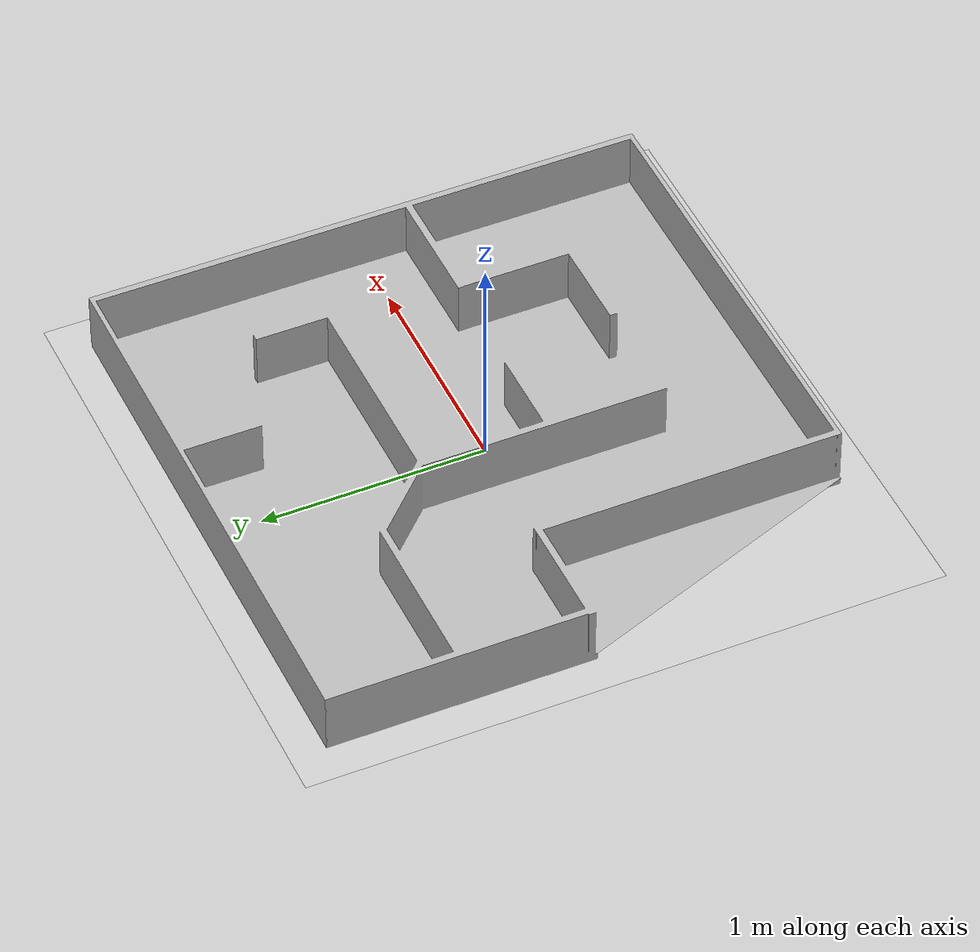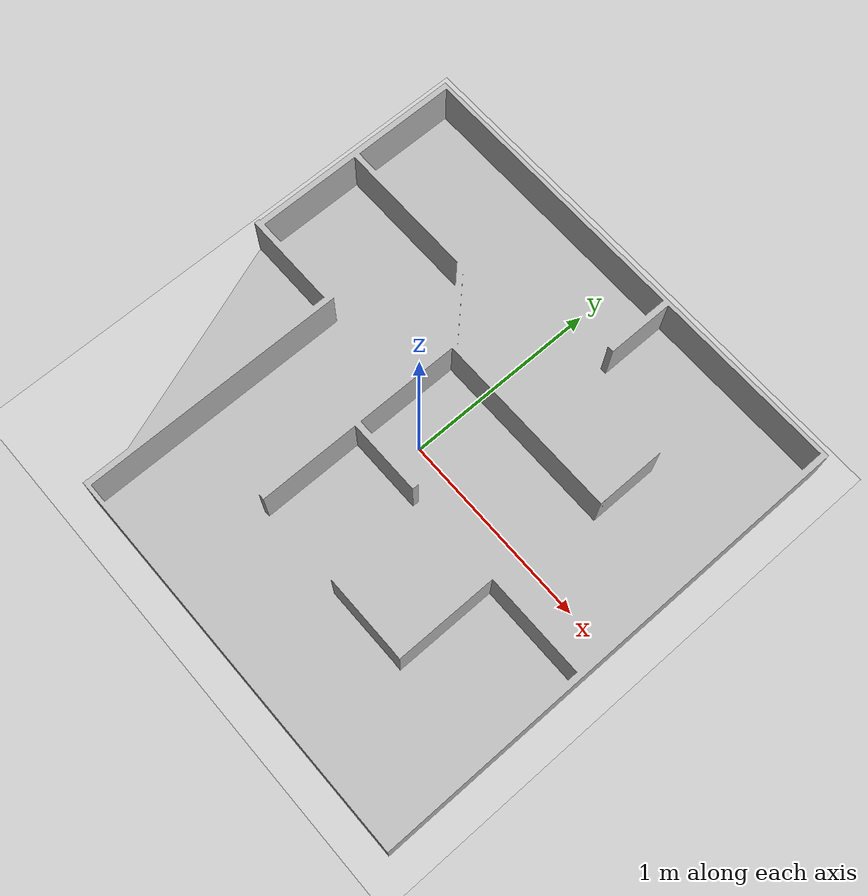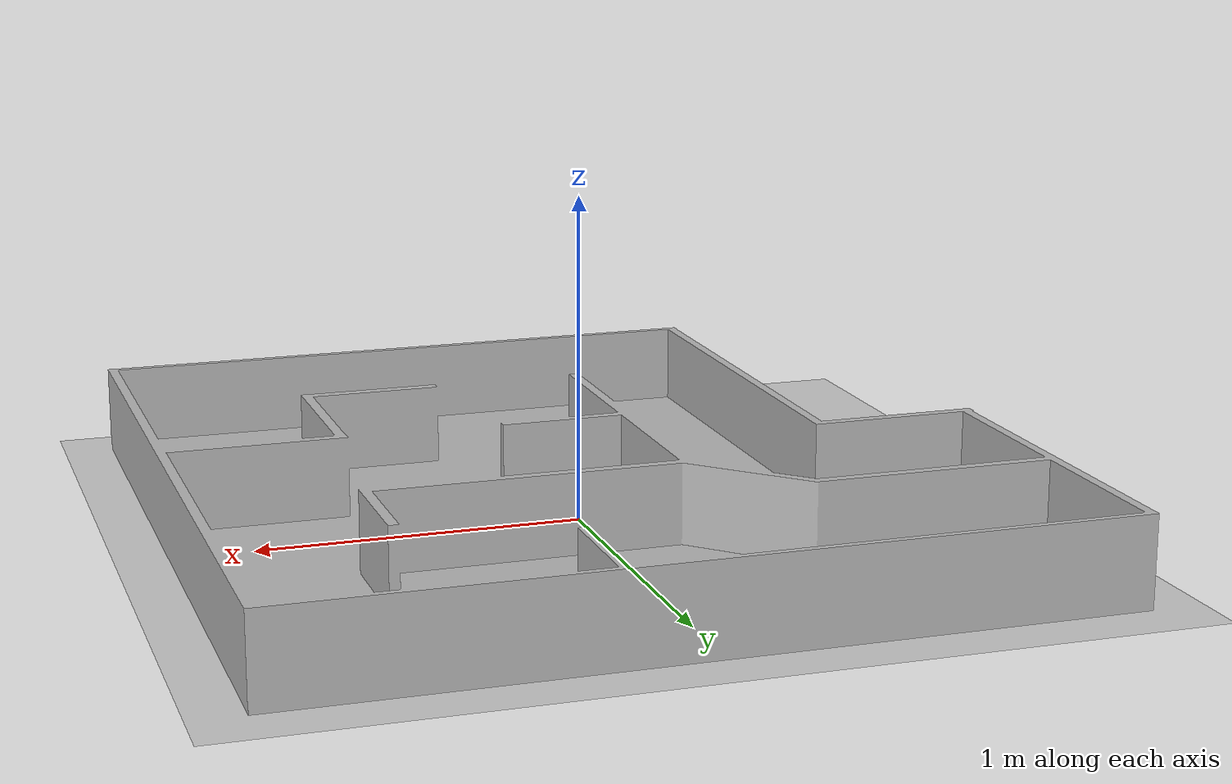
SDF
<?xml version="1.0"?>

<sdf version="1.6">
  <world name="husarion_world">
    <physics name="1ms" type="ignored">
      <max_step_size>0.001</max_step_size>
      <real_time_factor>1.0</real_time_factor>
    </physics>

    <light type="directional" name="sun">
      <cast_shadows>true</cast_shadows>
      <pose>0 0 10 0 0 0</pose>
      <diffuse>0.8 0.8 0.8 1</diffuse>
      <specular>0.2 0.2 0.2 1</specular>
      <attenuation>
        <range>1000</range>
        <constant>0.9</constant>
        <linear>0.01</linear>
        <quadratic>0.001</quadratic>
      </attenuation>
      <direction>-0.5 0.1 -0.9</direction>
    </light>

    <model name="ground_plane">
      <static>true</static>
      <link name="link">
        <collision name="collision">
          <geometry>
            <plane>
              <normal>0 0 1</normal>
              <size>100 100</size>
            </plane>
          </geometry>
        </collision>
        <visual name="visual">
          <geometry>
            <plane>
              <normal>0 0 1</normal>
              <size>100 100</size>
            </plane>
          </geometry>
          <material>
            <ambient>0.8 0.8 0.8 1</ambient>
            <diffuse>0.8 0.8 0.8 1</diffuse>
            <specular>0.8 0.8 0.8 1</specular>
          </material>
        </visual>
      </link>
    </model>

    <model name="cyberworld">
      <static>true</static>
      <link name="link">
        <pose>0.0 0.0 0 1.57 0 -1.57</pose>
        <visual name="visual">
          <geometry>
            <mesh>
              <uri>meshes/lab2.obj</uri>
              <scale>1.0 1.0 1.0</scale>
            </mesh>
          </geometry>
        </visual>
        <collision name="visual">
          <geometry>
            <mesh>
              <uri>meshes/lab2.obj</uri>
              <scale>1.0 1.0 1.0</scale>
            </mesh>
          </geometry>
        </collision>
      </link>
    </model>

  </world>
</sdf>
